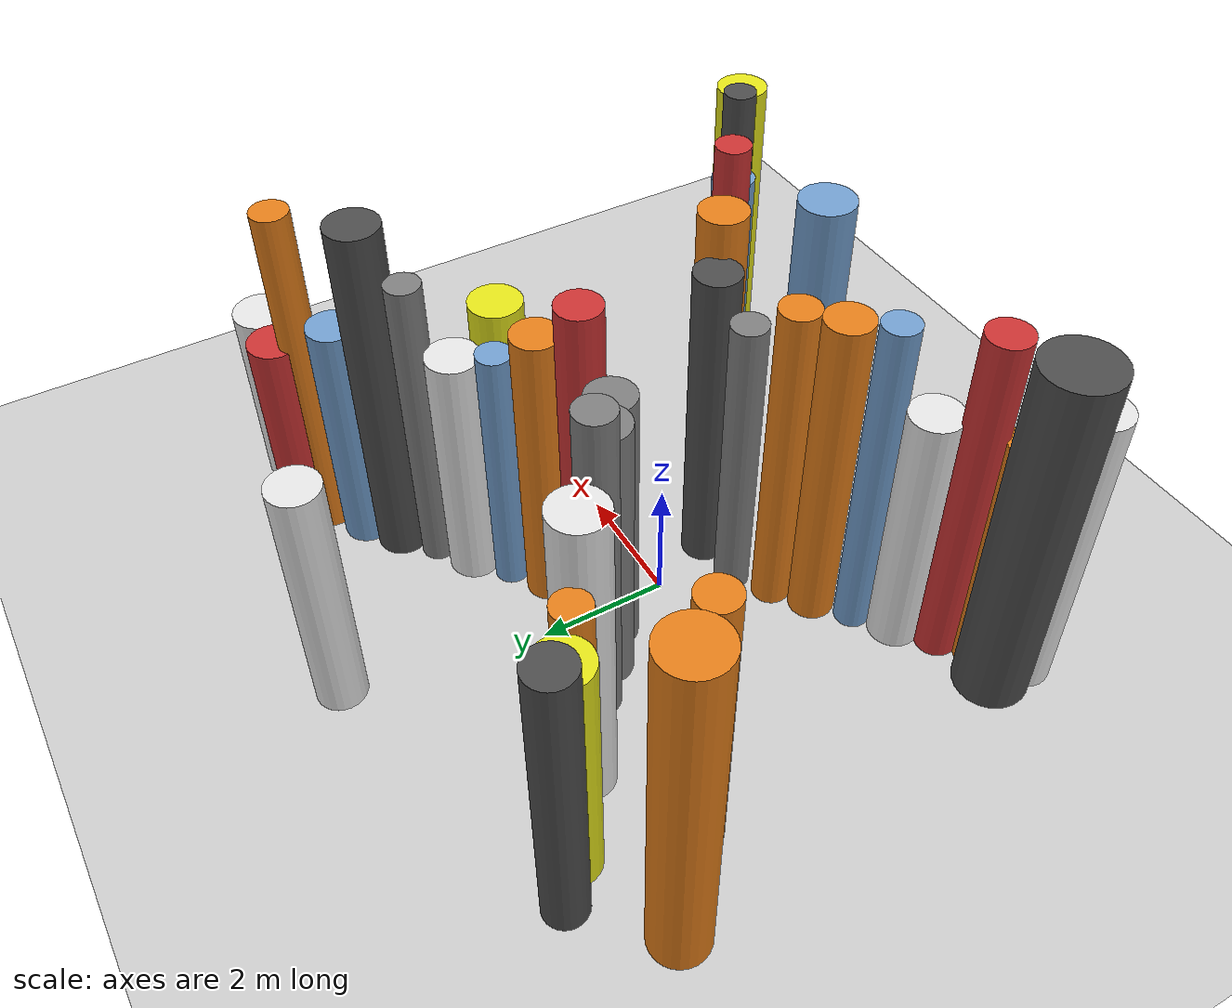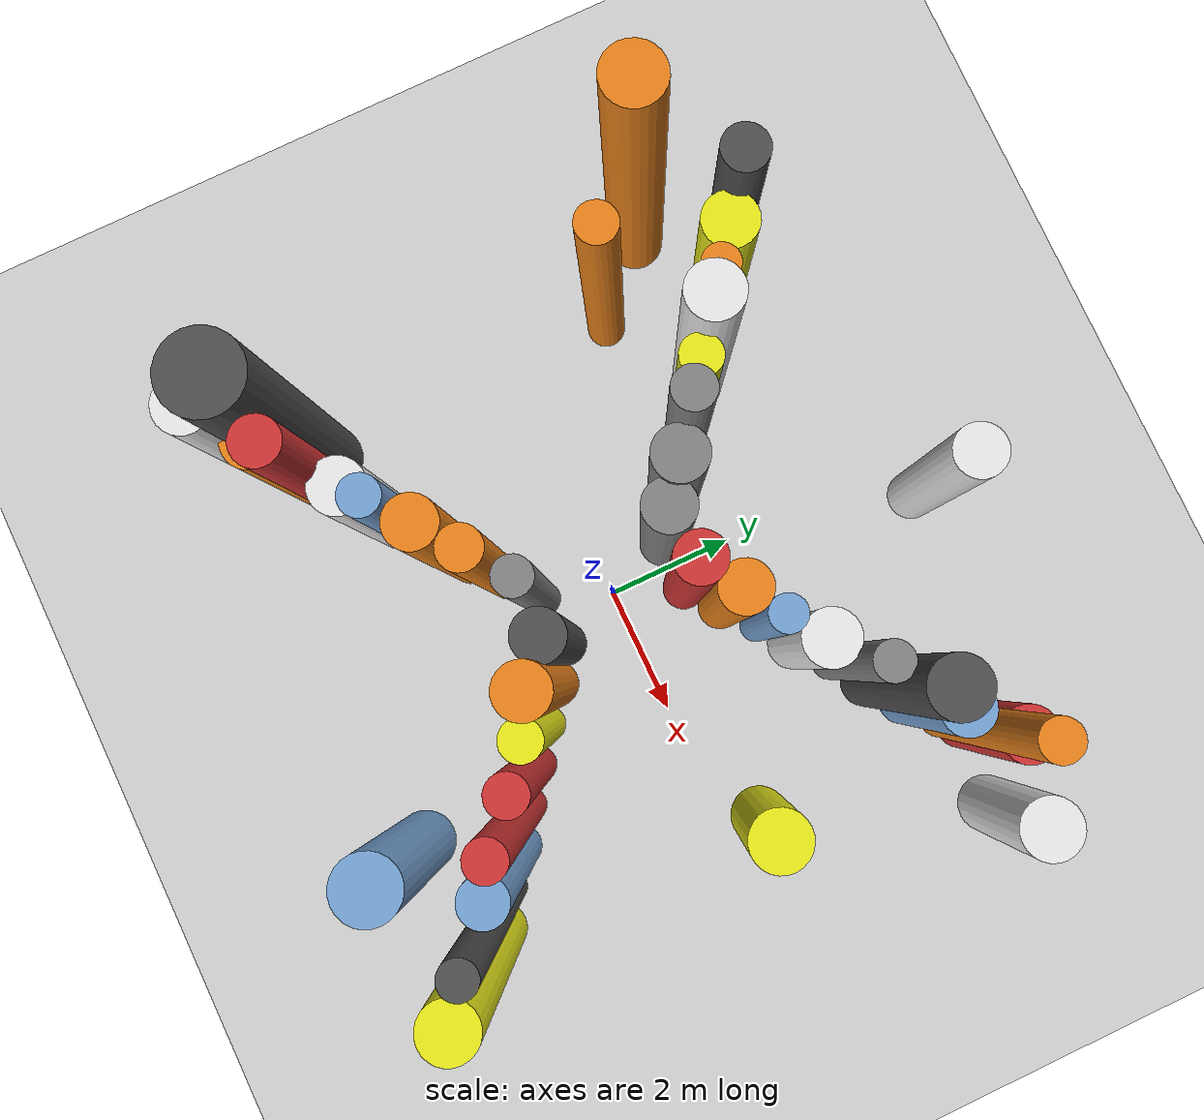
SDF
<?xml version='1.0'?>
<sdf version='1.6'>
  <world name='routeA_rl_v1__dense_recovery__rl_val__bottleneck_corridor__000100'>
    <!-- Sun light -->
    <light name='sun' type='directional'>
      <cast_shadows>1</cast_shadows>
      <pose>0 0 10 0 0 0</pose>
      <diffuse>0.8 0.8 0.8 1</diffuse>
      <specular>0.2 0.2 0.2 1</specular>
      <attenuation>
        <range>1000</range>
        <constant>0.9</constant>
        <linear>0.01</linear>
        <quadratic>0.001</quadratic>
      </attenuation>
      <direction>-0.5 0.1 -0.9</direction>
    </light>

    <!-- Ground plane -->
    <model name='ground_plane'>
      <static>1</static>
      <link name='link'>
        <collision name='collision'>
          <geometry>
            <plane>
              <normal>0 0 1</normal>
              <size>100 100</size>
            </plane>
          </geometry>
          <surface>
            <contact>
              <collide_bitmask>65535</collide_bitmask>
              <ode/>
            </contact>
            <friction>
              <ode>
                <mu>100</mu>
                <mu2>50</mu2>
              </ode>
              <torsional><ode/></torsional>
            </friction>
            <bounce/>
          </surface>
          <max_contacts>10</max_contacts>
        </collision>
        <visual name='visual'>
          <cast_shadows>0</cast_shadows>
          <geometry>
            <plane>
              <normal>0 0 1</normal>
              <size>100 100</size>
            </plane>
          </geometry>
          <material>
            <script>
              <uri>file://media/materials/scripts/gazebo.material</uri>
              <n>Gazebo/Grey</n>
            </script>
          </material>
        </visual>
      </link>
    </model>

    <!-- Environment -->
    <magnetic_field>6e-06 2.3e-05 -4.2e-05</magnetic_field>
    <atmosphere type='adiabatic'/>
    <physics name='default_physics' default='0' type='ode'>
      <gravity>0 0 -9.8</gravity>
      <max_step_size>0.004</max_step_size>
      <real_time_factor>1</real_time_factor>
      <real_time_update_rate>250</real_time_update_rate>
    </physics>
    <scene>
      <ambient>0.4 0.4 0.4 1</ambient>
      <background>0.7 0.7 0.7 1</background>
      <shadows>1</shadows>
    </scene>
    <wind/>
    <spherical_coordinates>
      <surface_model>EARTH_WGS84</surface_model>
      <latitude_deg>0</latitude_deg>
      <longitude_deg>0</longitude_deg>
      <elevation>0</elevation>
      <heading_deg>0</heading_deg>
    </spherical_coordinates>

    <!-- ============ OBSTACLES (40) ============ -->
    <model name='funnel_l_0'>
      <static>1</static>
      <link name='link'>
        <visual name='visual'>
          <geometry>
            <cylinder>
              <radius>0.3908</radius>
              <length>5.0228</length>
            </cylinder>
          </geometry>
          <material>
            <script>
              <n>Gazebo/White</n>
              <uri>file://media/materials/scripts/gazebo.material</uri>
            </script>
            <ambient>0.9 0.9 0.9 1</ambient>
          </material>
        </visual>
        <collision name='collision'>
          <geometry>
            <cylinder>
              <radius>0.3908</radius>
              <length>5.0228</length>
            </cylinder>
          </geometry>
          <max_contacts>10</max_contacts>
          <surface>
            <contact><ode/></contact>
            <bounce/>
            <friction>
              <ode><mu>1</mu><mu2>1</mu2></ode>
              <torsional><ode/></torsional>
            </friction>
          </surface>
        </collision>
      </link>
      <pose>-4.0000 -3.8000 2.5114 0 0 0.0000</pose>
    </model>

    <model name='funnel_r_0'>
      <static>1</static>
      <link name='link'>
        <visual name='visual'>
          <geometry>
            <cylinder>
              <radius>0.3299</radius>
              <length>4.9652</length>
            </cylinder>
          </geometry>
          <material>
            <script>
              <n>Gazebo/DarkGrey</n>
              <uri>file://media/materials/scripts/gazebo.material</uri>
            </script>
            <ambient>0.3 0.3 0.3 1</ambient>
          </material>
        </visual>
        <collision name='collision'>
          <geometry>
            <cylinder>
              <radius>0.3299</radius>
              <length>4.9652</length>
            </cylinder>
          </geometry>
          <max_contacts>10</max_contacts>
          <surface>
            <contact><ode/></contact>
            <bounce/>
            <friction>
              <ode><mu>1</mu><mu2>1</mu2></ode>
              <torsional><ode/></torsional>
            </friction>
          </surface>
        </collision>
      </link>
      <pose>-4.0000 3.8000 2.4826 0 0 0.0000</pose>
    </model>

    <model name='funnel_l_1'>
      <static>1</static>
      <link name='link'>
        <visual name='visual'>
          <geometry>
            <cylinder>
              <radius>0.3824</radius>
              <length>4.2348</length>
            </cylinder>
          </geometry>
          <material>
            <script>
              <n>Gazebo/Orange</n>
              <uri>file://media/materials/scripts/gazebo.material</uri>
            </script>
            <ambient>0.9 0.5 0.1 1</ambient>
          </material>
        </visual>
        <collision name='collision'>
          <geometry>
            <cylinder>
              <radius>0.3824</radius>
              <length>4.2348</length>
            </cylinder>
          </geometry>
          <max_contacts>10</max_contacts>
          <surface>
            <contact><ode/></contact>
            <bounce/>
            <friction>
              <ode><mu>1</mu><mu2>1</mu2></ode>
              <torsional><ode/></torsional>
            </friction>
          </surface>
        </collision>
      </link>
      <pose>-3.4857 -3.4071 2.1174 0 0 0.0000</pose>
    </model>

    <model name='funnel_r_1'>
      <static>1</static>
      <link name='link'>
        <visual name='visual'>
          <geometry>
            <cylinder>
              <radius>0.3993</radius>
              <length>4.1987</length>
            </cylinder>
          </geometry>
          <material>
            <script>
              <n>Gazebo/Yellow</n>
              <uri>file://media/materials/scripts/gazebo.material</uri>
            </script>
            <ambient>0.9 0.9 0.1 1</ambient>
          </material>
        </visual>
        <collision name='collision'>
          <geometry>
            <cylinder>
              <radius>0.3993</radius>
              <length>4.1987</length>
            </cylinder>
          </geometry>
          <max_contacts>10</max_contacts>
          <surface>
            <contact><ode/></contact>
            <bounce/>
            <friction>
              <ode><mu>1</mu><mu2>1</mu2></ode>
              <torsional><ode/></torsional>
            </friction>
          </surface>
        </collision>
      </link>
      <pose>-3.4857 3.4071 2.0994 0 0 0.0000</pose>
    </model>

    <model name='funnel_l_2'>
      <static>1</static>
      <link name='link'>
        <visual name='visual'>
          <geometry>
            <cylinder>
              <radius>0.3232</radius>
              <length>5.8132</length>
            </cylinder>
          </geometry>
          <material>
            <script>
              <n>Gazebo/Red</n>
              <uri>file://media/materials/scripts/gazebo.material</uri>
            </script>
            <ambient>0.8 0.2 0.2 1</ambient>
          </material>
        </visual>
        <collision name='collision'>
          <geometry>
            <cylinder>
              <radius>0.3232</radius>
              <length>5.8132</length>
            </cylinder>
          </geometry>
          <max_contacts>10</max_contacts>
          <surface>
            <contact><ode/></contact>
            <bounce/>
            <friction>
              <ode><mu>1</mu><mu2>1</mu2></ode>
              <torsional><ode/></torsional>
            </friction>
          </surface>
        </collision>
      </link>
      <pose>-2.9714 -3.0143 2.9066 0 0 0.0000</pose>
    </model>

    <model name='funnel_r_2'>
      <static>1</static>
      <link name='link'>
        <visual name='visual'>
          <geometry>
            <cylinder>
              <radius>0.2689</radius>
              <length>4.3866</length>
            </cylinder>
          </geometry>
          <material>
            <script>
              <n>Gazebo/Orange</n>
              <uri>file://media/materials/scripts/gazebo.material</uri>
            </script>
            <ambient>0.9 0.5 0.1 1</ambient>
          </material>
        </visual>
        <collision name='collision'>
          <geometry>
            <cylinder>
              <radius>0.2689</radius>
              <length>4.3866</length>
            </cylinder>
          </geometry>
          <max_contacts>10</max_contacts>
          <surface>
            <contact><ode/></contact>
            <bounce/>
            <friction>
              <ode><mu>1</mu><mu2>1</mu2></ode>
              <torsional><ode/></torsional>
            </friction>
          </surface>
        </collision>
      </link>
      <pose>-2.9714 3.0143 2.1933 0 0 0.0000</pose>
    </model>

    <model name='funnel_l_3'>
      <static>1</static>
      <link name='link'>
        <visual name='visual'>
          <geometry>
            <cylinder>
              <radius>0.3937</radius>
              <length>4.3118</length>
            </cylinder>
          </geometry>
          <material>
            <script>
              <n>Gazebo/White</n>
              <uri>file://media/materials/scripts/gazebo.material</uri>
            </script>
            <ambient>0.9 0.9 0.9 1</ambient>
          </material>
        </visual>
        <collision name='collision'>
          <geometry>
            <cylinder>
              <radius>0.3937</radius>
              <length>4.3118</length>
            </cylinder>
          </geometry>
          <max_contacts>10</max_contacts>
          <surface>
            <contact><ode/></contact>
            <bounce/>
            <friction>
              <ode><mu>1</mu><mu2>1</mu2></ode>
              <torsional><ode/></torsional>
            </friction>
          </surface>
        </collision>
      </link>
      <pose>-2.4571 -2.6214 2.1559 0 0 0.0000</pose>
    </model>

    <model name='funnel_r_3'>
      <static>1</static>
      <link name='link'>
        <visual name='visual'>
          <geometry>
            <cylinder>
              <radius>0.3982</radius>
              <length>5.2609</length>
            </cylinder>
          </geometry>
          <material>
            <script>
              <n>Gazebo/White</n>
              <uri>file://media/materials/scripts/gazebo.material</uri>
            </script>
            <ambient>0.9 0.9 0.9 1</ambient>
          </material>
        </visual>
        <collision name='collision'>
          <geometry>
            <cylinder>
              <radius>0.3982</radius>
              <length>5.2609</length>
            </cylinder>
          </geometry>
          <max_contacts>10</max_contacts>
          <surface>
            <contact><ode/></contact>
            <bounce/>
            <friction>
              <ode><mu>1</mu><mu2>1</mu2></ode>
              <torsional><ode/></torsional>
            </friction>
          </surface>
        </collision>
      </link>
      <pose>-2.4571 2.6214 2.6304 0 0 0.0000</pose>
    </model>

    <model name='funnel_l_4'>
      <static>1</static>
      <link name='link'>
        <visual name='visual'>
          <geometry>
            <cylinder>
              <radius>0.2707</radius>
              <length>5.5841</length>
            </cylinder>
          </geometry>
          <material>
            <script>
              <n>Gazebo/Blue</n>
              <uri>file://media/materials/scripts/gazebo.material</uri>
            </script>
            <ambient>0.447 0.624 0.812 1</ambient>
          </material>
        </visual>
        <collision name='collision'>
          <geometry>
            <cylinder>
              <radius>0.2707</radius>
              <length>5.5841</length>
            </cylinder>
          </geometry>
          <max_contacts>10</max_contacts>
          <surface>
            <contact><ode/></contact>
            <bounce/>
            <friction>
              <ode><mu>1</mu><mu2>1</mu2></ode>
              <torsional><ode/></torsional>
            </friction>
          </surface>
        </collision>
      </link>
      <pose>-1.9429 -2.2286 2.7920 0 0 0.0000</pose>
    </model>

    <model name='funnel_r_4'>
      <static>1</static>
      <link name='link'>
        <visual name='visual'>
          <geometry>
            <cylinder>
              <radius>0.2956</radius>
              <length>4.6269</length>
            </cylinder>
          </geometry>
          <material>
            <script>
              <n>Gazebo/Yellow</n>
              <uri>file://media/materials/scripts/gazebo.material</uri>
            </script>
            <ambient>0.9 0.9 0.1 1</ambient>
          </material>
        </visual>
        <collision name='collision'>
          <geometry>
            <cylinder>
              <radius>0.2956</radius>
              <length>4.6269</length>
            </cylinder>
          </geometry>
          <max_contacts>10</max_contacts>
          <surface>
            <contact><ode/></contact>
            <bounce/>
            <friction>
              <ode><mu>1</mu><mu2>1</mu2></ode>
              <torsional><ode/></torsional>
            </friction>
          </surface>
        </collision>
      </link>
      <pose>-1.9429 2.2286 2.3134 0 0 0.0000</pose>
    </model>

    <model name='funnel_l_5'>
      <static>1</static>
      <link name='link'>
        <visual name='visual'>
          <geometry>
            <cylinder>
              <radius>0.3517</radius>
              <length>5.4655</length>
            </cylinder>
          </geometry>
          <material>
            <script>
              <n>Gazebo/Orange</n>
              <uri>file://media/materials/scripts/gazebo.material</uri>
            </script>
            <ambient>0.9 0.5 0.1 1</ambient>
          </material>
        </visual>
        <collision name='collision'>
          <geometry>
            <cylinder>
              <radius>0.3517</radius>
              <length>5.4655</length>
            </cylinder>
          </geometry>
          <max_contacts>10</max_contacts>
          <surface>
            <contact><ode/></contact>
            <bounce/>
            <friction>
              <ode><mu>1</mu><mu2>1</mu2></ode>
              <torsional><ode/></torsional>
            </friction>
          </surface>
        </collision>
      </link>
      <pose>-1.4286 -1.8357 2.7327 0 0 0.0000</pose>
    </model>

    <model name='funnel_r_5'>
      <static>1</static>
      <link name='link'>
        <visual name='visual'>
          <geometry>
            <cylinder>
              <radius>0.2911</radius>
              <length>5.5784</length>
            </cylinder>
          </geometry>
          <material>
            <script>
              <n>Gazebo/Grey</n>
              <uri>file://media/materials/scripts/gazebo.material</uri>
            </script>
            <ambient>0.5 0.5 0.5 1</ambient>
          </material>
        </visual>
        <collision name='collision'>
          <geometry>
            <cylinder>
              <radius>0.2911</radius>
              <length>5.5784</length>
            </cylinder>
          </geometry>
          <max_contacts>10</max_contacts>
          <surface>
            <contact><ode/></contact>
            <bounce/>
            <friction>
              <ode><mu>1</mu><mu2>1</mu2></ode>
              <torsional><ode/></torsional>
            </friction>
          </surface>
        </collision>
      </link>
      <pose>-1.4286 1.8357 2.7892 0 0 0.0000</pose>
    </model>

    <model name='funnel_l_6'>
      <static>1</static>
      <link name='link'>
        <visual name='visual'>
          <geometry>
            <cylinder>
              <radius>0.2983</radius>
              <length>5.4429</length>
            </cylinder>
          </geometry>
          <material>
            <script>
              <n>Gazebo/Orange</n>
              <uri>file://media/materials/scripts/gazebo.material</uri>
            </script>
            <ambient>0.9 0.5 0.1 1</ambient>
          </material>
        </visual>
        <collision name='collision'>
          <geometry>
            <cylinder>
              <radius>0.2983</radius>
              <length>5.4429</length>
            </cylinder>
          </geometry>
          <max_contacts>10</max_contacts>
          <surface>
            <contact><ode/></contact>
            <bounce/>
            <friction>
              <ode><mu>1</mu><mu2>1</mu2></ode>
              <torsional><ode/></torsional>
            </friction>
          </surface>
        </collision>
      </link>
      <pose>-0.9143 -1.4429 2.7214 0 0 0.0000</pose>
    </model>

    <model name='funnel_r_6'>
      <static>1</static>
      <link name='link'>
        <visual name='visual'>
          <geometry>
            <cylinder>
              <radius>0.3841</radius>
              <length>4.7865</length>
            </cylinder>
          </geometry>
          <material>
            <script>
              <n>Gazebo/Grey</n>
              <uri>file://media/materials/scripts/gazebo.material</uri>
            </script>
            <ambient>0.5 0.5 0.5 1</ambient>
          </material>
        </visual>
        <collision name='collision'>
          <geometry>
            <cylinder>
              <radius>0.3841</radius>
              <length>4.7865</length>
            </cylinder>
          </geometry>
          <max_contacts>10</max_contacts>
          <surface>
            <contact><ode/></contact>
            <bounce/>
            <friction>
              <ode><mu>1</mu><mu2>1</mu2></ode>
              <torsional><ode/></torsional>
            </friction>
          </surface>
        </collision>
      </link>
      <pose>-0.9143 1.4429 2.3932 0 0 0.0000</pose>
    </model>

    <model name='funnel_l_7'>
      <static>1</static>
      <link name='link'>
        <visual name='visual'>
          <geometry>
            <cylinder>
              <radius>0.2713</radius>
              <length>4.9866</length>
            </cylinder>
          </geometry>
          <material>
            <script>
              <n>Gazebo/Grey</n>
              <uri>file://media/materials/scripts/gazebo.material</uri>
            </script>
            <ambient>0.5 0.5 0.5 1</ambient>
          </material>
        </visual>
        <collision name='collision'>
          <geometry>
            <cylinder>
              <radius>0.2713</radius>
              <length>4.9866</length>
            </cylinder>
          </geometry>
          <max_contacts>10</max_contacts>
          <surface>
            <contact><ode/></contact>
            <bounce/>
            <friction>
              <ode><mu>1</mu><mu2>1</mu2></ode>
              <torsional><ode/></torsional>
            </friction>
          </surface>
        </collision>
      </link>
      <pose>-0.4000 -1.0500 2.4933 0 0 0.0000</pose>
    </model>

    <model name='funnel_r_7'>
      <static>1</static>
      <link name='link'>
        <visual name='visual'>
          <geometry>
            <cylinder>
              <radius>0.3664</radius>
              <length>4.6820</length>
            </cylinder>
          </geometry>
          <material>
            <script>
              <n>Gazebo/Grey</n>
              <uri>file://media/materials/scripts/gazebo.material</uri>
            </script>
            <ambient>0.5 0.5 0.5 1</ambient>
          </material>
        </visual>
        <collision name='collision'>
          <geometry>
            <cylinder>
              <radius>0.3664</radius>
              <length>4.6820</length>
            </cylinder>
          </geometry>
          <max_contacts>10</max_contacts>
          <surface>
            <contact><ode/></contact>
            <bounce/>
            <friction>
              <ode><mu>1</mu><mu2>1</mu2></ode>
              <torsional><ode/></torsional>
            </friction>
          </surface>
        </collision>
      </link>
      <pose>-0.4000 1.0500 2.3410 0 0 0.0000</pose>
    </model>

    <model name='funnel_out_l_0'>
      <static>1</static>
      <link name='link'>
        <visual name='visual'>
          <geometry>
            <cylinder>
              <radius>0.3484</radius>
              <length>5.3180</length>
            </cylinder>
          </geometry>
          <material>
            <script>
              <n>Gazebo/DarkGrey</n>
              <uri>file://media/materials/scripts/gazebo.material</uri>
            </script>
            <ambient>0.3 0.3 0.3 1</ambient>
          </material>
        </visual>
        <collision name='collision'>
          <geometry>
            <cylinder>
              <radius>0.3484</radius>
              <length>5.3180</length>
            </cylinder>
          </geometry>
          <max_contacts>10</max_contacts>
          <surface>
            <contact><ode/></contact>
            <bounce/>
            <friction>
              <ode><mu>1</mu><mu2>1</mu2></ode>
              <torsional><ode/></torsional>
            </friction>
          </surface>
        </collision>
      </link>
      <pose>0.4000 -1.0500 2.6590 0 0 0.0000</pose>
    </model>

    <model name='funnel_out_r_0'>
      <static>1</static>
      <link name='link'>
        <visual name='visual'>
          <geometry>
            <cylinder>
              <radius>0.3375</radius>
              <length>5.5763</length>
            </cylinder>
          </geometry>
          <material>
            <script>
              <n>Gazebo/Red</n>
              <uri>file://media/materials/scripts/gazebo.material</uri>
            </script>
            <ambient>0.8 0.2 0.2 1</ambient>
          </material>
        </visual>
        <collision name='collision'>
          <geometry>
            <cylinder>
              <radius>0.3375</radius>
              <length>5.5763</length>
            </cylinder>
          </geometry>
          <max_contacts>10</max_contacts>
          <surface>
            <contact><ode/></contact>
            <bounce/>
            <friction>
              <ode><mu>1</mu><mu2>1</mu2></ode>
              <torsional><ode/></torsional>
            </friction>
          </surface>
        </collision>
      </link>
      <pose>0.4000 1.0500 2.7881 0 0 0.0000</pose>
    </model>

    <model name='funnel_out_l_1'>
      <static>1</static>
      <link name='link'>
        <visual name='visual'>
          <geometry>
            <cylinder>
              <radius>0.3618</radius>
              <length>5.8587</length>
            </cylinder>
          </geometry>
          <material>
            <script>
              <n>Gazebo/Orange</n>
              <uri>file://media/materials/scripts/gazebo.material</uri>
            </script>
            <ambient>0.9 0.5 0.1 1</ambient>
          </material>
        </visual>
        <collision name='collision'>
          <geometry>
            <cylinder>
              <radius>0.3618</radius>
              <length>5.8587</length>
            </cylinder>
          </geometry>
          <max_contacts>10</max_contacts>
          <surface>
            <contact><ode/></contact>
            <bounce/>
            <friction>
              <ode><mu>1</mu><mu2>1</mu2></ode>
              <torsional><ode/></torsional>
            </friction>
          </surface>
        </collision>
      </link>
      <pose>0.9143 -1.4429 2.9294 0 0 0.0000</pose>
    </model>

    <model name='funnel_out_r_1'>
      <static>1</static>
      <link name='link'>
        <visual name='visual'>
          <geometry>
            <cylinder>
              <radius>0.3547</radius>
              <length>4.9150</length>
            </cylinder>
          </geometry>
          <material>
            <script>
              <n>Gazebo/Orange</n>
              <uri>file://media/materials/scripts/gazebo.material</uri>
            </script>
            <ambient>0.9 0.5 0.1 1</ambient>
          </material>
        </visual>
        <collision name='collision'>
          <geometry>
            <cylinder>
              <radius>0.3547</radius>
              <length>4.9150</length>
            </cylinder>
          </geometry>
          <max_contacts>10</max_contacts>
          <surface>
            <contact><ode/></contact>
            <bounce/>
            <friction>
              <ode><mu>1</mu><mu2>1</mu2></ode>
              <torsional><ode/></torsional>
            </friction>
          </surface>
        </collision>
      </link>
      <pose>0.9143 1.4429 2.4575 0 0 0.0000</pose>
    </model>

    <model name='funnel_out_l_2'>
      <static>1</static>
      <link name='link'>
        <visual name='visual'>
          <geometry>
            <cylinder>
              <radius>0.2932</radius>
              <length>4.5012</length>
            </cylinder>
          </geometry>
          <material>
            <script>
              <n>Gazebo/Yellow</n>
              <uri>file://media/materials/scripts/gazebo.material</uri>
            </script>
            <ambient>0.9 0.9 0.1 1</ambient>
          </material>
        </visual>
        <collision name='collision'>
          <geometry>
            <cylinder>
              <radius>0.2932</radius>
              <length>4.5012</length>
            </cylinder>
          </geometry>
          <max_contacts>10</max_contacts>
          <surface>
            <contact><ode/></contact>
            <bounce/>
            <friction>
              <ode><mu>1</mu><mu2>1</mu2></ode>
              <torsional><ode/></torsional>
            </friction>
          </surface>
        </collision>
      </link>
      <pose>1.4286 -1.8357 2.2506 0 0 0.0000</pose>
    </model>

    <model name='funnel_out_r_2'>
      <static>1</static>
      <link name='link'>
        <visual name='visual'>
          <geometry>
            <cylinder>
              <radius>0.2617</radius>
              <length>4.3812</length>
            </cylinder>
          </geometry>
          <material>
            <script>
              <n>Gazebo/Blue</n>
              <uri>file://media/materials/scripts/gazebo.material</uri>
            </script>
            <ambient>0.447 0.624 0.812 1</ambient>
          </material>
        </visual>
        <collision name='collision'>
          <geometry>
            <cylinder>
              <radius>0.2617</radius>
              <length>4.3812</length>
            </cylinder>
          </geometry>
          <max_contacts>10</max_contacts>
          <surface>
            <contact><ode/></contact>
            <bounce/>
            <friction>
              <ode><mu>1</mu><mu2>1</mu2></ode>
              <torsional><ode/></torsional>
            </friction>
          </surface>
        </collision>
      </link>
      <pose>1.4286 1.8357 2.1906 0 0 0.0000</pose>
    </model>

    <model name='funnel_out_l_3'>
      <static>1</static>
      <link name='link'>
        <visual name='visual'>
          <geometry>
            <cylinder>
              <radius>0.2926</radius>
              <length>4.8110</length>
            </cylinder>
          </geometry>
          <material>
            <script>
              <n>Gazebo/Red</n>
              <uri>file://media/materials/scripts/gazebo.material</uri>
            </script>
            <ambient>0.8 0.2 0.2 1</ambient>
          </material>
        </visual>
        <collision name='collision'>
          <geometry>
            <cylinder>
              <radius>0.2926</radius>
              <length>4.8110</length>
            </cylinder>
          </geometry>
          <max_contacts>10</max_contacts>
          <surface>
            <contact><ode/></contact>
            <bounce/>
            <friction>
              <ode><mu>1</mu><mu2>1</mu2></ode>
              <torsional><ode/></torsional>
            </friction>
          </surface>
        </collision>
      </link>
      <pose>1.9429 -2.2286 2.4055 0 0 0.0000</pose>
    </model>

    <model name='funnel_out_r_3'>
      <static>1</static>
      <link name='link'>
        <visual name='visual'>
          <geometry>
            <cylinder>
              <radius>0.3989</radius>
              <length>4.1432</length>
            </cylinder>
          </geometry>
          <material>
            <script>
              <n>Gazebo/White</n>
              <uri>file://media/materials/scripts/gazebo.material</uri>
            </script>
            <ambient>0.9 0.9 0.9 1</ambient>
          </material>
        </visual>
        <collision name='collision'>
          <geometry>
            <cylinder>
              <radius>0.3989</radius>
              <length>4.1432</length>
            </cylinder>
          </geometry>
          <max_contacts>10</max_contacts>
          <surface>
            <contact><ode/></contact>
            <bounce/>
            <friction>
              <ode><mu>1</mu><mu2>1</mu2></ode>
              <torsional><ode/></torsional>
            </friction>
          </surface>
        </collision>
      </link>
      <pose>1.9429 2.2286 2.0716 0 0 0.0000</pose>
    </model>

    <model name='funnel_out_l_4'>
      <static>1</static>
      <link name='link'>
        <visual name='visual'>
          <geometry>
            <cylinder>
              <radius>0.2743</radius>
              <length>5.7039</length>
            </cylinder>
          </geometry>
          <material>
            <script>
              <n>Gazebo/Red</n>
              <uri>file://media/materials/scripts/gazebo.material</uri>
            </script>
            <ambient>0.8 0.2 0.2 1</ambient>
          </material>
        </visual>
        <collision name='collision'>
          <geometry>
            <cylinder>
              <radius>0.2743</radius>
              <length>5.7039</length>
            </cylinder>
          </geometry>
          <max_contacts>10</max_contacts>
          <surface>
            <contact><ode/></contact>
            <bounce/>
            <friction>
              <ode><mu>1</mu><mu2>1</mu2></ode>
              <torsional><ode/></torsional>
            </friction>
          </surface>
        </collision>
      </link>
      <pose>2.4571 -2.6214 2.8520 0 0 0.0000</pose>
    </model>

    <model name='funnel_out_r_4'>
      <static>1</static>
      <link name='link'>
        <visual name='visual'>
          <geometry>
            <cylinder>
              <radius>0.2660</radius>
              <length>5.1684</length>
            </cylinder>
          </geometry>
          <material>
            <script>
              <n>Gazebo/Grey</n>
              <uri>file://media/materials/scripts/gazebo.material</uri>
            </script>
            <ambient>0.5 0.5 0.5 1</ambient>
          </material>
        </visual>
        <collision name='collision'>
          <geometry>
            <cylinder>
              <radius>0.2660</radius>
              <length>5.1684</length>
            </cylinder>
          </geometry>
          <max_contacts>10</max_contacts>
          <surface>
            <contact><ode/></contact>
            <bounce/>
            <friction>
              <ode><mu>1</mu><mu2>1</mu2></ode>
              <torsional><ode/></torsional>
            </friction>
          </surface>
        </collision>
      </link>
      <pose>2.4571 2.6214 2.5842 0 0 0.0000</pose>
    </model>

    <model name='funnel_out_l_5'>
      <static>1</static>
      <link name='link'>
        <visual name='visual'>
          <geometry>
            <cylinder>
              <radius>0.3348</radius>
              <length>4.7596</length>
            </cylinder>
          </geometry>
          <material>
            <script>
              <n>Gazebo/Blue</n>
              <uri>file://media/materials/scripts/gazebo.material</uri>
            </script>
            <ambient>0.447 0.624 0.812 1</ambient>
          </material>
        </visual>
        <collision name='collision'>
          <geometry>
            <cylinder>
              <radius>0.3348</radius>
              <length>4.7596</length>
            </cylinder>
          </geometry>
          <max_contacts>10</max_contacts>
          <surface>
            <contact><ode/></contact>
            <bounce/>
            <friction>
              <ode><mu>1</mu><mu2>1</mu2></ode>
              <torsional><ode/></torsional>
            </friction>
          </surface>
        </collision>
      </link>
      <pose>2.9714 -3.0143 2.3798 0 0 0.0000</pose>
    </model>

    <model name='funnel_out_r_5'>
      <static>1</static>
      <link name='link'>
        <visual name='visual'>
          <geometry>
            <cylinder>
              <radius>0.3970</radius>
              <length>5.9422</length>
            </cylinder>
          </geometry>
          <material>
            <script>
              <n>Gazebo/DarkGrey</n>
              <uri>file://media/materials/scripts/gazebo.material</uri>
            </script>
            <ambient>0.3 0.3 0.3 1</ambient>
          </material>
        </visual>
        <collision name='collision'>
          <geometry>
            <cylinder>
              <radius>0.3970</radius>
              <length>5.9422</length>
            </cylinder>
          </geometry>
          <max_contacts>10</max_contacts>
          <surface>
            <contact><ode/></contact>
            <bounce/>
            <friction>
              <ode><mu>1</mu><mu2>1</mu2></ode>
              <torsional><ode/></torsional>
            </friction>
          </surface>
        </collision>
      </link>
      <pose>2.9714 3.0143 2.9711 0 0 0.0000</pose>
    </model>

    <model name='funnel_out_l_6'>
      <static>1</static>
      <link name='link'>
        <visual name='visual'>
          <geometry>
            <cylinder>
              <radius>0.2510</radius>
              <length>5.8423</length>
            </cylinder>
          </geometry>
          <material>
            <script>
              <n>Gazebo/DarkGrey</n>
              <uri>file://media/materials/scripts/gazebo.material</uri>
            </script>
            <ambient>0.3 0.3 0.3 1</ambient>
          </material>
        </visual>
        <collision name='collision'>
          <geometry>
            <cylinder>
              <radius>0.2510</radius>
              <length>5.8423</length>
            </cylinder>
          </geometry>
          <max_contacts>10</max_contacts>
          <surface>
            <contact><ode/></contact>
            <bounce/>
            <friction>
              <ode><mu>1</mu><mu2>1</mu2></ode>
              <torsional><ode/></torsional>
            </friction>
          </surface>
        </collision>
      </link>
      <pose>3.4857 -3.4071 2.9211 0 0 0.0000</pose>
    </model>

    <model name='funnel_out_r_6'>
      <static>1</static>
      <link name='link'>
        <visual name='visual'>
          <geometry>
            <cylinder>
              <radius>0.3726</radius>
              <length>4.0721</length>
            </cylinder>
          </geometry>
          <material>
            <script>
              <n>Gazebo/Blue</n>
              <uri>file://media/materials/scripts/gazebo.material</uri>
            </script>
            <ambient>0.447 0.624 0.812 1</ambient>
          </material>
        </visual>
        <collision name='collision'>
          <geometry>
            <cylinder>
              <radius>0.3726</radius>
              <length>4.0721</length>
            </cylinder>
          </geometry>
          <max_contacts>10</max_contacts>
          <surface>
            <contact><ode/></contact>
            <bounce/>
            <friction>
              <ode><mu>1</mu><mu2>1</mu2></ode>
              <torsional><ode/></torsional>
            </friction>
          </surface>
        </collision>
      </link>
      <pose>3.4857 3.4071 2.0361 0 0 0.0000</pose>
    </model>

    <model name='funnel_out_l_7'>
      <static>1</static>
      <link name='link'>
        <visual name='visual'>
          <geometry>
            <cylinder>
              <radius>0.3885</radius>
              <length>5.5825</length>
            </cylinder>
          </geometry>
          <material>
            <script>
              <n>Gazebo/Yellow</n>
              <uri>file://media/materials/scripts/gazebo.material</uri>
            </script>
            <ambient>0.9 0.9 0.1 1</ambient>
          </material>
        </visual>
        <collision name='collision'>
          <geometry>
            <cylinder>
              <radius>0.3885</radius>
              <length>5.5825</length>
            </cylinder>
          </geometry>
          <max_contacts>10</max_contacts>
          <surface>
            <contact><ode/></contact>
            <bounce/>
            <friction>
              <ode><mu>1</mu><mu2>1</mu2></ode>
              <torsional><ode/></torsional>
            </friction>
          </surface>
        </collision>
      </link>
      <pose>4.0000 -3.8000 2.7913 0 0 0.0000</pose>
    </model>

    <model name='funnel_out_r_7'>
      <static>1</static>
      <link name='link'>
        <visual name='visual'>
          <geometry>
            <cylinder>
              <radius>0.2799</radius>
              <length>5.8206</length>
            </cylinder>
          </geometry>
          <material>
            <script>
              <n>Gazebo/Orange</n>
              <uri>file://media/materials/scripts/gazebo.material</uri>
            </script>
            <ambient>0.9 0.5 0.1 1</ambient>
          </material>
        </visual>
        <collision name='collision'>
          <geometry>
            <cylinder>
              <radius>0.2799</radius>
              <length>5.8206</length>
            </cylinder>
          </geometry>
          <max_contacts>10</max_contacts>
          <surface>
            <contact><ode/></contact>
            <bounce/>
            <friction>
              <ode><mu>1</mu><mu2>1</mu2></ode>
              <torsional><ode/></torsional>
            </friction>
          </surface>
        </collision>
      </link>
      <pose>4.0000 3.8000 2.9103 0 0 0.0000</pose>
    </model>

    <model name='bn_scatter_0'>
      <static>1</static>
      <link name='link'>
        <visual name='visual'>
          <geometry>
            <cylinder>
              <radius>0.2968</radius>
              <length>4.8445</length>
            </cylinder>
          </geometry>
          <material>
            <script>
              <n>Gazebo/Orange</n>
              <uri>file://media/materials/scripts/gazebo.material</uri>
            </script>
            <ambient>0.9 0.5 0.1 1</ambient>
          </material>
        </visual>
        <collision name='collision'>
          <geometry>
            <cylinder>
              <radius>0.2968</radius>
              <length>4.8445</length>
            </cylinder>
          </geometry>
          <max_contacts>10</max_contacts>
          <surface>
            <contact><ode/></contact>
            <bounce/>
            <friction>
              <ode><mu>1</mu><mu2>1</mu2></ode>
              <torsional><ode/></torsional>
            </friction>
          </surface>
        </collision>
      </link>
      <pose>-3.9662 1.7308 2.4223 0 0 0.0000</pose>
    </model>

    <model name='bn_scatter_1'>
      <static>1</static>
      <link name='link'>
        <visual name='visual'>
          <geometry>
            <cylinder>
              <radius>0.3782</radius>
              <length>4.1599</length>
            </cylinder>
          </geometry>
          <material>
            <script>
              <n>Gazebo/White</n>
              <uri>file://media/materials/scripts/gazebo.material</uri>
            </script>
            <ambient>0.9 0.9 0.9 1</ambient>
          </material>
        </visual>
        <collision name='collision'>
          <geometry>
            <cylinder>
              <radius>0.3782</radius>
              <length>4.1599</length>
            </cylinder>
          </geometry>
          <max_contacts>10</max_contacts>
          <surface>
            <contact><ode/></contact>
            <bounce/>
            <friction>
              <ode><mu>1</mu><mu2>1</mu2></ode>
              <torsional><ode/></torsional>
            </friction>
          </surface>
        </collision>
      </link>
      <pose>0.6071 4.9976 2.0799 0 0 0.0000</pose>
    </model>

    <model name='bn_scatter_2'>
      <static>1</static>
      <link name='link'>
        <visual name='visual'>
          <geometry>
            <cylinder>
              <radius>0.4473</radius>
              <length>3.1864</length>
            </cylinder>
          </geometry>
          <material>
            <script>
              <n>Gazebo/White</n>
              <uri>file://media/materials/scripts/gazebo.material</uri>
            </script>
            <ambient>0.9 0.9 0.9 1</ambient>
          </material>
        </visual>
        <collision name='collision'>
          <geometry>
            <cylinder>
              <radius>0.4473</radius>
              <length>3.1864</length>
            </cylinder>
          </geometry>
          <max_contacts>10</max_contacts>
          <surface>
            <contact><ode/></contact>
            <bounce/>
            <friction>
              <ode><mu>1</mu><mu2>1</mu2></ode>
              <torsional><ode/></torsional>
            </friction>
          </surface>
        </collision>
      </link>
      <pose>5.5008 3.8981 1.5932 0 0 0.0000</pose>
    </model>

    <model name='bn_scatter_3'>
      <static>1</static>
      <link name='link'>
        <visual name='visual'>
          <geometry>
            <cylinder>
              <radius>0.4000</radius>
              <length>3.5738</length>
            </cylinder>
          </geometry>
          <material>
            <script>
              <n>Gazebo/Red</n>
              <uri>file://media/materials/scripts/gazebo.material</uri>
            </script>
            <ambient>0.8 0.2 0.2 1</ambient>
          </material>
        </visual>
        <collision name='collision'>
          <geometry>
            <cylinder>
              <radius>0.4000</radius>
              <length>3.5738</length>
            </cylinder>
          </geometry>
          <max_contacts>10</max_contacts>
          <surface>
            <contact><ode/></contact>
            <bounce/>
            <friction>
              <ode><mu>1</mu><mu2>1</mu2></ode>
              <torsional><ode/></torsional>
            </friction>
          </surface>
        </collision>
      </link>
      <pose>4.1969 4.0928 1.7869 0 0 0.0000</pose>
    </model>

    <model name='bn_scatter_4'>
      <static>1</static>
      <link name='link'>
        <visual name='visual'>
          <geometry>
            <cylinder>
              <radius>0.4371</radius>
              <length>5.8292</length>
            </cylinder>
          </geometry>
          <material>
            <script>
              <n>Gazebo/Orange</n>
              <uri>file://media/materials/scripts/gazebo.material</uri>
            </script>
            <ambient>0.9 0.5 0.1 1</ambient>
          </material>
        </visual>
        <collision name='collision'>
          <geometry>
            <cylinder>
              <radius>0.4371</radius>
              <length>5.8292</length>
            </cylinder>
          </geometry>
          <max_contacts>10</max_contacts>
          <surface>
            <contact><ode/></contact>
            <bounce/>
            <friction>
              <ode><mu>1</mu><mu2>1</mu2></ode>
              <torsional><ode/></torsional>
            </friction>
          </surface>
        </collision>
      </link>
      <pose>-5.0647 2.7649 2.9146 0 0 0.0000</pose>
    </model>

    <model name='bn_scatter_5'>
      <static>1</static>
      <link name='link'>
        <visual name='visual'>
          <geometry>
            <cylinder>
              <radius>0.5552</radius>
              <length>5.9273</length>
            </cylinder>
          </geometry>
          <material>
            <script>
              <n>Gazebo/DarkGrey</n>
              <uri>file://media/materials/scripts/gazebo.material</uri>
            </script>
            <ambient>0.3 0.3 0.3 1</ambient>
          </material>
        </visual>
        <collision name='collision'>
          <geometry>
            <cylinder>
              <radius>0.5552</radius>
              <length>5.9273</length>
            </cylinder>
          </geometry>
          <max_contacts>10</max_contacts>
          <surface>
            <contact><ode/></contact>
            <bounce/>
            <friction>
              <ode><mu>1</mu><mu2>1</mu2></ode>
              <torsional><ode/></torsional>
            </friction>
          </surface>
        </collision>
      </link>
      <pose>-3.9309 -3.2403 2.9637 0 0 0.0000</pose>
    </model>

    <model name='bn_scatter_6'>
      <static>1</static>
      <link name='link'>
        <visual name='visual'>
          <geometry>
            <cylinder>
              <radius>0.4540</radius>
              <length>3.0146</length>
            </cylinder>
          </geometry>
          <material>
            <script>
              <n>Gazebo/Yellow</n>
              <uri>file://media/materials/scripts/gazebo.material</uri>
            </script>
            <ambient>0.9 0.9 0.1 1</ambient>
          </material>
        </visual>
        <collision name='collision'>
          <geometry>
            <cylinder>
              <radius>0.4540</radius>
              <length>3.0146</length>
            </cylinder>
          </geometry>
          <max_contacts>10</max_contacts>
          <surface>
            <contact><ode/></contact>
            <bounce/>
            <friction>
              <ode><mu>1</mu><mu2>1</mu2></ode>
              <torsional><ode/></torsional>
            </friction>
          </surface>
        </collision>
      </link>
      <pose>4.1402 0.5907 1.5073 0 0 0.0000</pose>
    </model>

    <model name='bn_scatter_7'>
      <static>1</static>
      <link name='link'>
        <visual name='visual'>
          <geometry>
            <cylinder>
              <radius>0.4791</radius>
              <length>4.3271</length>
            </cylinder>
          </geometry>
          <material>
            <script>
              <n>Gazebo/Blue</n>
              <uri>file://media/materials/scripts/gazebo.material</uri>
            </script>
            <ambient>0.447 0.624 0.812 1</ambient>
          </material>
        </visual>
        <collision name='collision'>
          <geometry>
            <cylinder>
              <radius>0.4791</radius>
              <length>4.3271</length>
            </cylinder>
          </geometry>
          <max_contacts>10</max_contacts>
          <surface>
            <contact><ode/></contact>
            <bounce/>
            <friction>
              <ode><mu>1</mu><mu2>1</mu2></ode>
              <torsional><ode/></torsional>
            </friction>
          </surface>
        </collision>
      </link>
      <pose>2.2663 -4.3311 2.1636 0 0 0.0000</pose>
    </model>

    <!-- GUI camera -->
    <gui fullscreen='0'>
      <camera name='user_camera'>
        <pose>-15 0 18 0 0.85 0.15</pose>
        <view_controller>orbit</view_controller>
        <projection_type>perspective</projection_type>
      </camera>
    </gui>
  </world>
</sdf>
